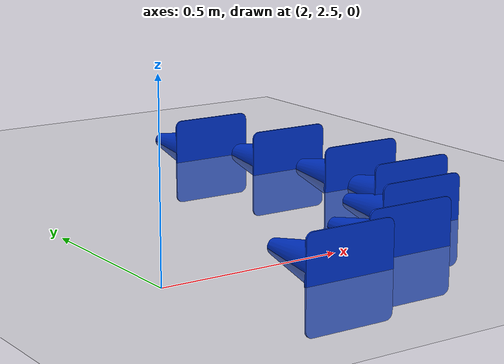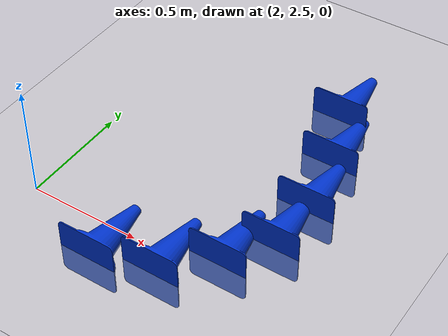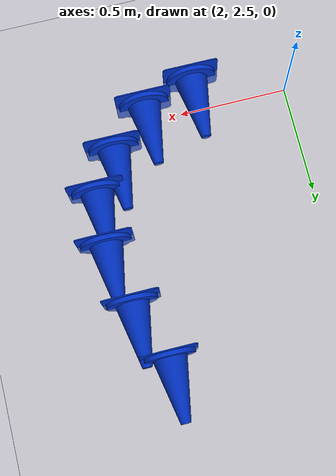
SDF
<sdf version="1.7">
 <world name="default">
  <model name="ground_plane">
   <static>1</static>
   <link name="link">
    <collision name="collision">
     <geometry><plane><normal>0 0 1</normal><size>100 100</size></plane></geometry>
     <surface><friction><ode><mu>100</mu><mu2>50</mu2></ode></friction></surface>
    </collision>
    <visual name="visual">
     <cast_shadows>0</cast_shadows>
     <geometry><plane><normal>0 0 1</normal><size>100 100</size></plane></geometry>
     <material>
      <script><uri>file://media/materials/scripts/gazebo.material</uri><name>Gazebo/Grey</name></script>
     </material>
    </visual>
   </link>
  </model>
  <model name="cone_blue_0">
   <static>1</static>
   <link name="link">
    <visual name="visual">
     <geometry><mesh><uri>model://cone_blue/meshes/cone.stl</uri><scale>0.001 0.001 0.001</scale></mesh></geometry>
     <material><ambient>0 0.2 0.8 1</ambient><diffuse>0 0.2 0.8 1</diffuse></material>
    </visual>
    <collision name="collision">
     <geometry><mesh><uri>model://cone_blue/meshes/cone.stl</uri><scale>0.001 0.001 0.001</scale></mesh></geometry>
    </collision>
    <inertial>
     <mass>0.1</mass>
     <inertia><ixx>0.0001</ixx><iyy>0.0001</iyy><izz>0.0001</izz><ixy>0</ixy><ixz>0</ixz><iyz>0</iyz></inertia>
    </inertial>
   </link>
   <pose>2.8157 3.58631 0 0 -0 0</pose>
  </model>
  <model name="cone_blue_1">
   <static>1</static>
   <link name="link">
    <visual name="visual">
     <geometry><mesh><uri>model://cone_blue/meshes/cone.stl</uri><scale>0.001 0.001 0.001</scale></mesh></geometry>
     <material><ambient>0 0.2 0.8 1</ambient><diffuse>0 0.2 0.8 1</diffuse></material>
    </visual>
    <collision name="collision">
     <geometry><mesh><uri>model://cone_blue/meshes/cone.stl</uri><scale>0.001 0.001 0.001</scale></mesh></geometry>
    </collision>
    <inertial>
     <mass>0.1</mass>
     <inertia><ixx>0.0001</ixx><iyy>0.0001</iyy><izz>0.0001</izz><ixy>0</ixy><ixz>0</ixz><iyz>0</iyz></inertia>
    </inertial>
   </link>
   <pose>2.92114 3.31402 0 0 -0 0</pose>
  </model>
  <model name="cone_blue_2">
   <static>1</static>
   <link name="link">
    <visual name="visual">
     <geometry><mesh><uri>model://cone_blue/meshes/cone.stl</uri><scale>0.001 0.001 0.001</scale></mesh></geometry>
     <material><ambient>0 0.2 0.8 1</ambient><diffuse>0 0.2 0.8 1</diffuse></material>
    </visual>
    <collision name="collision">
     <geometry><mesh><uri>model://cone_blue/meshes/cone.stl</uri><scale>0.001 0.001 0.001</scale></mesh></geometry>
    </collision>
    <inertial>
     <mass>0.1</mass>
     <inertia><ixx>0.0001</ixx><iyy>0.0001</iyy><izz>0.0001</izz><ixy>0</ixy><ixz>0</ixz><iyz>0</iyz></inertia>
    </inertial>
   </link>
   <pose>2.97571 3.02533 0 0 -0 0</pose>
  </model>
  <model name="cone_blue_3">
   <static>1</static>
   <link name="link">
    <visual name="visual">
     <geometry><mesh><uri>model://cone_blue/meshes/cone.stl</uri><scale>0.001 0.001 0.001</scale></mesh></geometry>
     <material><ambient>0 0.2 0.8 1</ambient><diffuse>0 0.2 0.8 1</diffuse></material>
    </visual>
    <collision name="collision">
     <geometry><mesh><uri>model://cone_blue/meshes/cone.stl</uri><scale>0.001 0.001 0.001</scale></mesh></geometry>
    </collision>
    <inertial>
     <mass>0.1</mass>
     <inertia><ixx>0.0001</ixx><iyy>0.0001</iyy><izz>0.0001</izz><ixy>0</ixy><ixz>0</ixz><iyz>0</iyz></inertia>
    </inertial>
   </link>
   <pose>2.96296 2.78086 0 0 -0 0</pose>
  </model>
  <model name="cone_yellow_5">
   <static>1</static>
   <link name="link">
    <visual name="visual">
     <geometry>
      <mesh><uri>model://cone_yellow/meshes/cone.stl</uri><scale>0.001 0.001 0.001</scale></mesh>
     </geometry>
     <material><ambient>1 0.82 0 1</ambient><diffuse>1 0.82 0 1</diffuse></material>
    </visual>
    <collision name="collision">
     <geometry>
      <mesh><uri>model://cone_yellow/meshes/cone.stl</uri><scale>0.001 0.001 0.001</scale></mesh>
     </geometry>
    </collision>
    <inertial>
     <mass>0.1</mass>
     <inertia><ixx>0.0001</ixx><iyy>0.0001</iyy><izz>0.0001</izz><ixy>0</ixy><ixz>0</ixz><iyz>0</iyz></inertia>
    </inertial>
   </link>
   <pose>2.50956 3.3435 0 0 -0 0</pose>
  </model>
  <model name="cone_yellow_6">
   <static>1</static>
   <link name="link">
    <visual name="visual">
     <geometry>
      <mesh><uri>model://cone_yellow/meshes/cone.stl</uri><scale>0.001 0.001 0.001</scale></mesh>
     </geometry>
     <material><ambient>1 0.82 0 1</ambient><diffuse>1 0.82 0 1</diffuse></material>
    </visual>
    <collision name="collision">
     <geometry>
      <mesh><uri>model://cone_yellow/meshes/cone.stl</uri><scale>0.001 0.001 0.001</scale></mesh>
     </geometry>
    </collision>
    <inertial>
     <mass>0.1</mass>
     <inertia><ixx>0.0001</ixx><iyy>0.0001</iyy><izz>0.0001</izz><ixy>0</ixy><ixz>0</ixz><iyz>0</iyz></inertia>
    </inertial>
   </link>
   <pose>2.52169 3.03328 0 0 -0 0</pose>
  </model>
  <model name="cone_yellow_7">
   <static>1</static>
   <link name="link">
    <visual name="visual">
     <geometry>
      <mesh><uri>model://cone_yellow/meshes/cone.stl</uri><scale>0.001 0.001 0.001</scale></mesh>
     </geometry>
     <material><ambient>1 0.82 0 1</ambient><diffuse>1 0.82 0 1</diffuse></material>
    </visual>
    <collision name="collision">
     <geometry>
      <mesh><uri>model://cone_yellow/meshes/cone.stl</uri><scale>0.001 0.001 0.001</scale></mesh>
     </geometry>
    </collision>
    <inertial>
     <mass>0.1</mass>
     <inertia><ixx>0.0001</ixx><iyy>0.0001</iyy><izz>0.0001</izz><ixy>0</ixy><ixz>0</ixz><iyz>0</iyz></inertia>
    </inertial>
   </link>
   <pose>2.43952 2.81725 0 0 -0 0</pose>
  </model>
  <model name="cone_blue_11">
   <static>1</static>
   <link name="link">
    <visual name="visual">
     <geometry><mesh><uri>model://cone_blue/meshes/cone.stl</uri><scale>0.001 0.001 0.001</scale></mesh></geometry>
     <material><ambient>0 0.2 0.8 1</ambient><diffuse>0 0.2 0.8 1</diffuse></material>
    </visual>
    <collision name="collision">
     <geometry><mesh><uri>model://cone_blue/meshes/cone.stl</uri><scale>0.001 0.001 0.001</scale></mesh></geometry>
    </collision>
    <inertial>
     <mass>0.1</mass>
     <inertia><ixx>0.0001</ixx><iyy>0.0001</iyy><izz>0.0001</izz><ixy>0</ixy><ixz>0</ixz><iyz>0</iyz></inertia>
    </inertial>
   </link>
   <pose>2.84208 2.59534 0 0 -0 0</pose>
  </model>
  <model name="cone_blue_12">
   <static>1</static>
   <link name="link">
    <visual name="visual">
     <geometry><mesh><uri>model://cone_blue/meshes/cone.stl</uri><scale>0.001 0.001 0.001</scale></mesh></geometry>
     <material><ambient>0 0.2 0.8 1</ambient><diffuse>0 0.2 0.8 1</diffuse></material>
    </visual>
    <collision name="collision">
     <geometry><mesh><uri>model://cone_blue/meshes/cone.stl</uri><scale>0.001 0.001 0.001</scale></mesh></geometry>
    </collision>
    <inertial>
     <mass>0.1</mass>
     <inertia><ixx>0.0001</ixx><iyy>0.0001</iyy><izz>0.0001</izz><ixy>0</ixy><ixz>0</ixz><iyz>0</iyz></inertia>
    </inertial>
   </link>
   <pose>2.65559 2.41749 0 0 -0 0</pose>
  </model>
  <model name="cone_yellow_8">
   <static>1</static>
   <link name="link">
    <visual name="visual">
     <geometry>
      <mesh><uri>model://cone_yellow/meshes/cone.stl</uri><scale>0.001 0.001 0.001</scale></mesh>
     </geometry>
     <material><ambient>1 0.82 0 1</ambient><diffuse>1 0.82 0 1</diffuse></material>
    </visual>
    <collision name="collision">
     <geometry>
      <mesh><uri>model://cone_yellow/meshes/cone.stl</uri><scale>0.001 0.001 0.001</scale></mesh>
     </geometry>
    </collision>
    <inertial>
     <mass>0.1</mass>
     <inertia><ixx>0.0001</ixx><iyy>0.0001</iyy><izz>0.0001</izz><ixy>0</ixy><ixz>0</ixz><iyz>0</iyz></inertia>
    </inertial>
   </link>
   <pose>2.23773 2.78723 0 0 -0 0</pose>
  </model>
  <model name="cone_blue_13">
   <static>1</static>
   <link name="link">
    <visual name="visual">
     <geometry><mesh><uri>model://cone_blue/meshes/cone.stl</uri><scale>0.001 0.001 0.001</scale></mesh></geometry>
     <material><ambient>0 0.2 0.8 1</ambient><diffuse>0 0.2 0.8 1</diffuse></material>
    </visual>
    <collision name="collision">
     <geometry><mesh><uri>model://cone_blue/meshes/cone.stl</uri><scale>0.001 0.001 0.001</scale></mesh></geometry>
    </collision>
    <inertial>
     <mass>0.1</mass>
     <inertia><ixx>0.0001</ixx><iyy>0.0001</iyy><izz>0.0001</izz><ixy>0</ixy><ixz>0</ixz><iyz>0</iyz></inertia>
    </inertial>
   </link>
   <pose>2.41104 2.3445 0 0 -0 0</pose>
  </model>
 </world>
</sdf>
